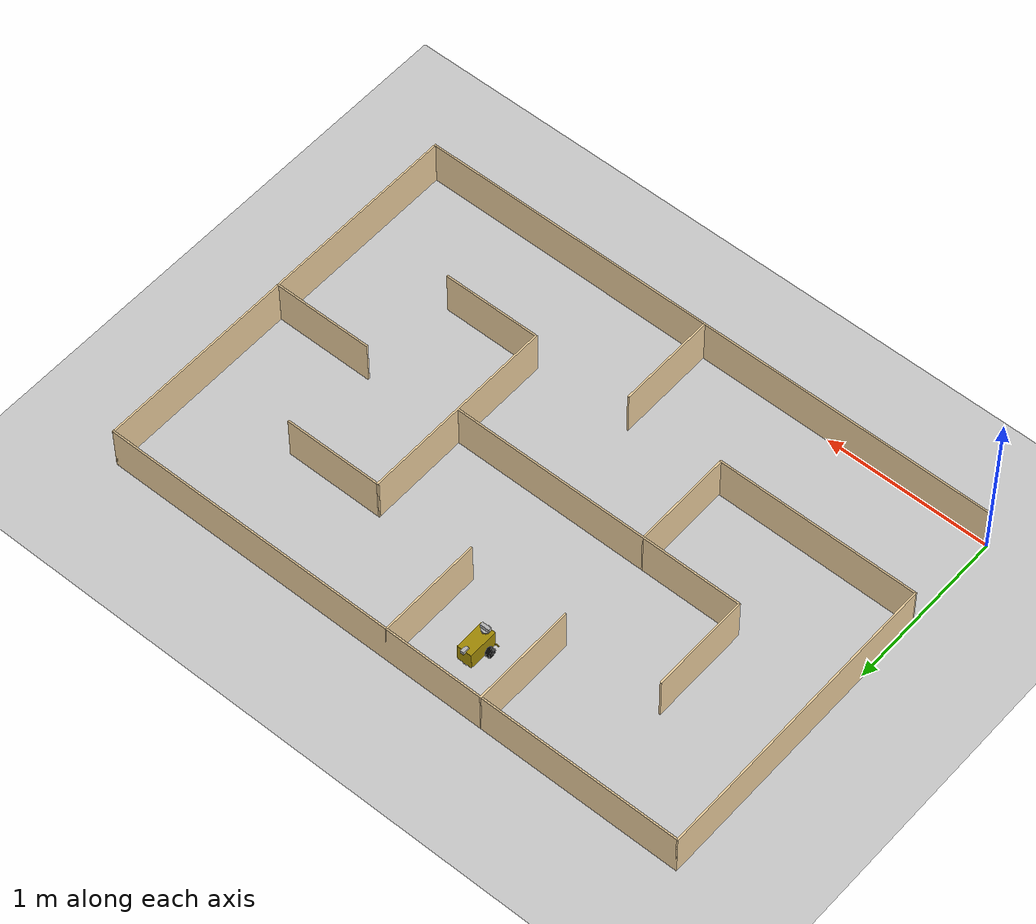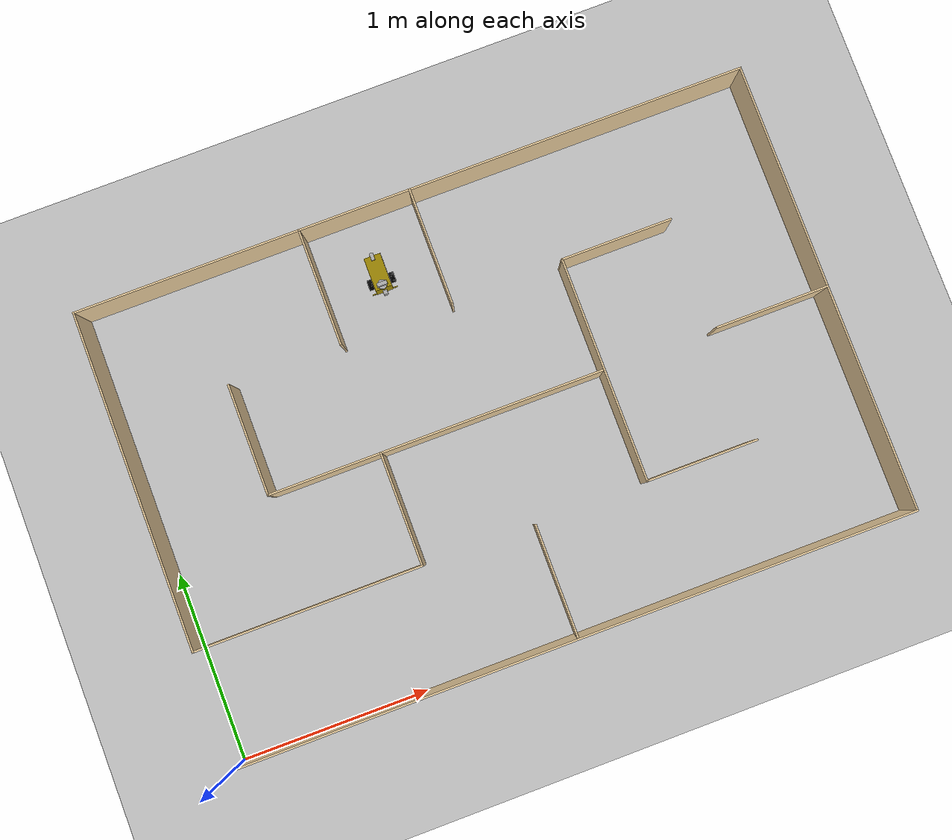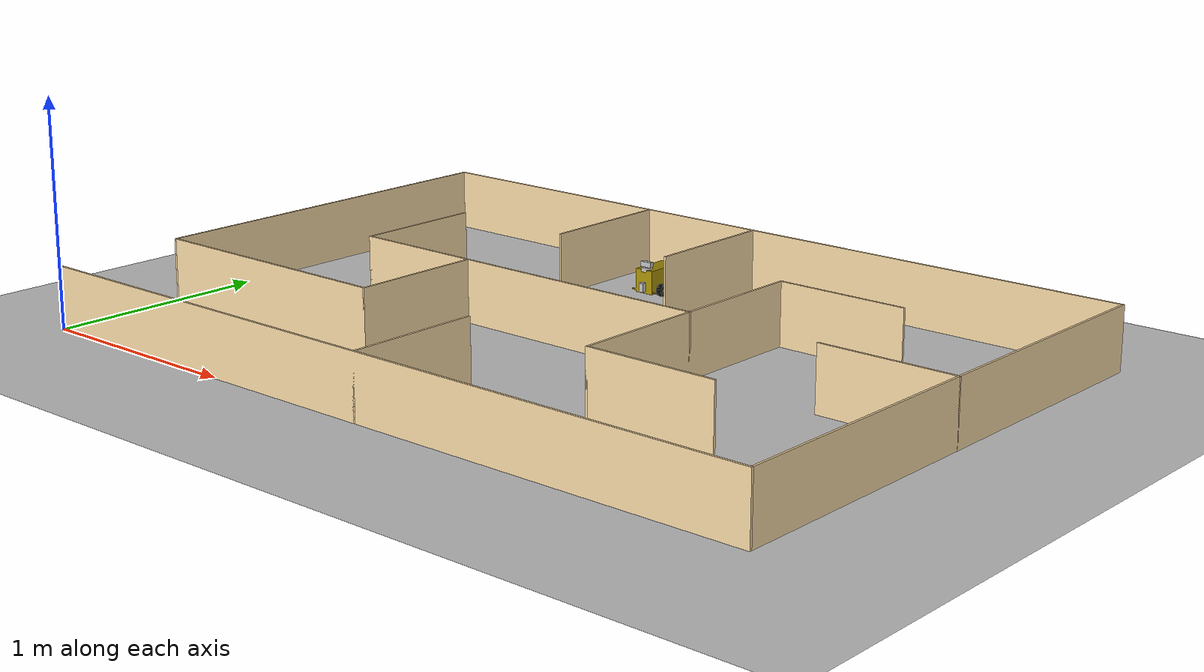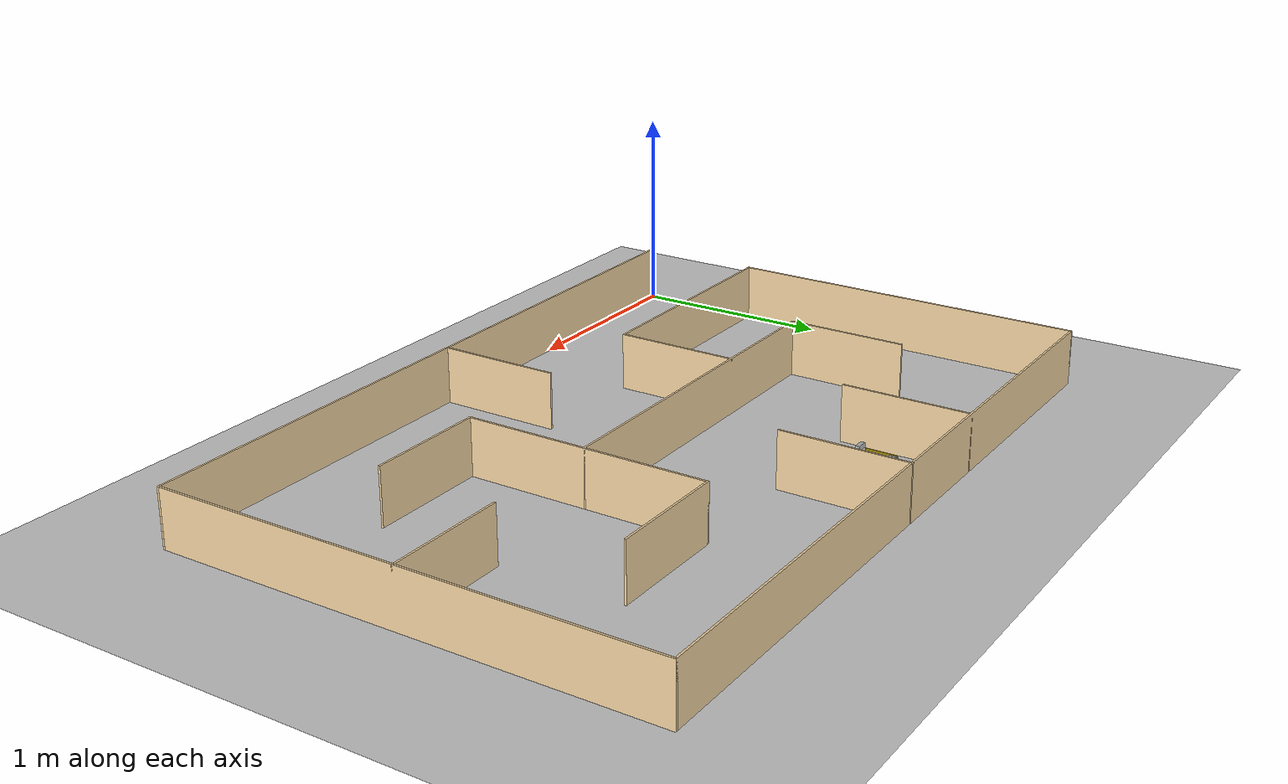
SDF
<?xml version="1.0" ?>
<sdf version="1.4">
  <world name="default">
    <scene>
      <ambient>0.5 0.5 0.5 1.0</ambient>
      <shadows>0</shadows>
    </scene>
    <include>
      <uri>model://ground_plane</uri>
    </include>
    <include>
      <uri>model://sun</uri>
    </include>
    <include>
      <uri>model://lego_mindstorm</uri>
      <name>lego_robot</name>
      <pose>1.51 2.11 0 0 0 3.1415926536</pose> <!-- this is the robot's starting position, if you know where it should be, you can change this -->
    </include>

    <model name='labyrinth_normal2'>
    <pose frame=''>1.81 1.21 0 0 -0 0</pose>
    <link name='Wall_0'>
      <collision name='Wall_0_Collision'>
        <geometry>
          <box>
            <size>1.82 0.01 0.28</size>
          </box>
        </geometry>
        <pose frame=''>0 0 0.14 0 -0 0</pose>
      </collision>
      <visual name='Wall_0_Visual'>
        <pose frame=''>0 0 0.14 0 -0 0</pose>
        <geometry>
          <box>
            <size>1.82 0.01 0.28</size>
          </box>
        </geometry>
        <material>
          <script>
            <uri>file://media/materials/scripts/gazebo.material</uri>
            <name>Gazebo/Grey</name>
          </script>
          <ambient>0.921569 0.807843 0.615686 1</ambient>
        </material>
        <meta>
          <layer>0</layer>
        </meta>
      </visual>
      <pose frame=''>-1.81 0.305 0 0 -0 1.5708</pose>
    </link>
    <link name='Wall_10'>
      <collision name='Wall_10_Collision'>
        <geometry>
          <box>
            <size>0.61 0.01 0.28</size>
          </box>
        </geometry>
        <pose frame=''>0 0 0.14 0 -0 0</pose>
      </collision>
      <visual name='Wall_10_Visual'>
        <pose frame=''>0 0 0.14 0 -0 0</pose>
        <geometry>
          <box>
            <size>0.61 0.01 0.28</size>
          </box>
        </geometry>
        <material>
          <script>
            <uri>file://media/materials/scripts/gazebo.material</uri>
            <name>Gazebo/Grey</name>
          </script>
          <ambient>0.921569 0.807843 0.615686 1</ambient>
        </material>
        <meta>
          <layer>0</layer>
        </meta>
      </visual>
      <pose frame=''>1.51 0 0 0 -0 3.14159</pose>
    </link>
    <link name='Wall_12'>
      <collision name='Wall_12_Collision'>
        <geometry>
          <box>
            <size>0.63 0.01 0.28</size>
          </box>
        </geometry>
        <pose frame=''>0 0 0.14 0 -0 0</pose>
      </collision>
      <visual name='Wall_12_Visual'>
        <pose frame=''>0 0 0.14 0 -0 0</pose>
        <geometry>
          <box>
            <size>0.63 0.01 0.28</size>
          </box>
        </geometry>
        <material>
          <script>
            <uri>file://media/materials/scripts/gazebo.material</uri>
            <name>Gazebo/Grey</name>
          </script>
          <ambient>0.921569 0.807843 0.615686 1</ambient>
        </material>
        <meta>
          <layer>0</layer>
        </meta>
      </visual>
      <pose frame=''>-0.6 0.9 0 0 0 -1.5708</pose>
    </link>
    <link name='Wall_14'>
      <collision name='Wall_14_Collision'>
        <geometry>
          <box>
            <size>0.63 0.01 0.28</size>
          </box>
        </geometry>
        <pose frame=''>0 0 0.14 0 -0 0</pose>
      </collision>
      <visual name='Wall_14_Visual'>
        <pose frame=''>0 0 0.14 0 -0 0</pose>
        <geometry>
          <box>
            <size>0.63 0.01 0.28</size>
          </box>
        </geometry>
        <material>
          <script>
            <uri>file://media/materials/scripts/gazebo.material</uri>
            <name>Gazebo/Grey</name>
          </script>
          <ambient>0.921569 0.807843 0.615686 1</ambient>
        </material>
        <meta>
          <layer>0</layer>
        </meta>
      </visual>
      <pose frame=''>0 0.9 0 0 0 -1.5708</pose>
    </link>
    <link name='Wall_16'>
      <collision name='Wall_16_Collision'>
        <geometry>
          <box>
            <size>1.22 0.01 0.28</size>
          </box>
        </geometry>
        <pose frame=''>0 0 0.14 0 -0 0</pose>
      </collision>
      <visual name='Wall_16_Visual'>
        <pose frame=''>0 0 0.14 0 -0 0</pose>
        <geometry>
          <box>
            <size>1.22 0.01 0.28</size>
          </box>
        </geometry>
        <material>
          <script>
            <uri>file://media/materials/scripts/gazebo.material</uri>
            <name>Gazebo/Grey</name>
          </script>
          <ambient>0.921569 0.807843 0.615686 1</ambient>
        </material>
        <meta>
          <layer>0</layer>
        </meta>
      </visual>
      <pose frame=''>-1.205 -0.6 0 0 -0 0</pose>
    </link>
    <link name='Wall_18'>
      <collision name='Wall_18_Collision'>
        <geometry>
          <box>
            <size>0.61 0.01 0.28</size>
          </box>
        </geometry>
        <pose frame=''>0 0 0.14 0 -0 0</pose>
      </collision>
      <visual name='Wall_18_Visual'>
        <pose frame=''>0 0 0.14 0 -0 0</pose>
        <geometry>
          <box>
            <size>0.61 0.01 0.28</size>
          </box>
        </geometry>
        <material>
          <script>
            <uri>file://media/materials/scripts/gazebo.material</uri>
            <name>Gazebo/Grey</name>
          </script>
          <ambient>0.921569 0.807843 0.615686 1</ambient>
        </material>
        <meta>
          <layer>0</layer>
        </meta>
      </visual>
      <pose frame=''>-0.6 -0.3 0 0 -0 1.5708</pose>
    </link>
    <link name='Wall_2'>
      <collision name='Wall_2_Collision'>
        <geometry>
          <box>
            <size>3.63 0.01 0.28</size>
          </box>
        </geometry>
        <pose frame=''>0 0 0.14 0 -0 0</pose>
      </collision>
      <visual name='Wall_2_Visual'>
        <pose frame=''>0 0 0.14 0 -0 0</pose>
        <geometry>
          <box>
            <size>3.63 0.01 0.28</size>
          </box>
        </geometry>
        <material>
          <script>
            <uri>file://media/materials/scripts/gazebo.material</uri>
            <name>Gazebo/Grey</name>
          </script>
          <ambient>0.921569 0.807843 0.615686 1</ambient>
        </material>
        <meta>
          <layer>0</layer>
        </meta>
      </visual>
      <pose frame=''>0 1.21 0 0 -0 0</pose>
    </link>
    <link name='Wall_20'>
      <collision name='Wall_20_Collision'>
        <geometry>
          <box>
            <size>0.6 0.01 0.28</size>
          </box>
        </geometry>
        <pose frame=''>0 0 0.14 0 -0 0</pose>
      </collision>
      <visual name='Wall_20_Visual'>
        <pose frame=''>0 0 0.14 0 -0 0</pose>
        <geometry>
          <box>
            <size>0.6 0.01 0.28</size>
          </box>
        </geometry>
        <material>
          <script>
            <uri>file://media/materials/scripts/gazebo.material</uri>
            <name>Gazebo/Grey</name>
          </script>
          <ambient>0.921569 0.807843 0.615686 1</ambient>
        </material>
        <meta>
          <layer>0</layer>
        </meta>
      </visual>
      <pose frame=''>-1.2 0.295 0 0 0 -1.5708</pose>
    </link>
    <link name='Wall_22'>
      <collision name='Wall_22_Collision'>
        <geometry>
          <box>
            <size>1.81 0.01 0.28</size>
          </box>
        </geometry>
        <pose frame=''>0 0 0.14 0 -0 0</pose>
      </collision>
      <visual name='Wall_22_Visual'>
        <pose frame=''>0 0 0.14 0 -0 0</pose>
        <geometry>
          <box>
            <size>1.81 0.01 0.28</size>
          </box>
        </geometry>
        <material>
          <script>
            <uri>file://media/materials/scripts/gazebo.material</uri>
            <name>Gazebo/Grey</name>
          </script>
          <ambient>0.921569 0.807843 0.615686 1</ambient>
        </material>
        <meta>
          <layer>0</layer>
        </meta>
      </visual>
      <pose frame=''>-0.3 0 0 0 -0 0</pose>
    </link>
    <link name='Wall_24'>
      <collision name='Wall_24_Collision'>
        <geometry>
          <box>
            <size>1.21 0.01 0.28</size>
          </box>
        </geometry>
        <pose frame=''>0 0 0.14 0 -0 0</pose>
      </collision>
      <visual name='Wall_24_Visual'>
        <pose frame=''>0 0 0.14 0 -0 0</pose>
        <geometry>
          <box>
            <size>1.21 0.01 0.28</size>
          </box>
        </geometry>
        <material>
          <script>
            <uri>file://media/materials/scripts/gazebo.material</uri>
            <name>Gazebo/Grey</name>
          </script>
          <ambient>0.921569 0.807843 0.615686 1</ambient>
        </material>
        <meta>
          <layer>0</layer>
        </meta>
      </visual>
      <pose frame=''>0.6 0 0 0 0 -1.5708</pose>
    </link>
    <link name='Wall_26'>
      <collision name='Wall_26_Collision'>
        <geometry>
          <box>
            <size>0.6 0.01 0.28</size>
          </box>
        </geometry>
        <pose frame=''>0 0 0.14 0 -0 0</pose>
      </collision>
      <visual name='Wall_26_Visual'>
        <pose frame=''>0 0 0.14 0 -0 0</pose>
        <geometry>
          <box>
            <size>0.6 0.01 0.28</size>
          </box>
        </geometry>
        <material>
          <script>
            <uri>file://media/materials/scripts/gazebo.material</uri>
            <name>Gazebo/Grey</name>
          </script>
          <ambient>0.921569 0.807843 0.615686 1</ambient>
        </material>
        <meta>
          <layer>0</layer>
        </meta>
      </visual>
      <pose frame=''>0.895 0.6 0 0 -0 0</pose>
    </link>
    <link name='Wall_28'>
      <collision name='Wall_28_Collision'>
        <geometry>
          <box>
            <size>0.6 0.01 0.28</size>
          </box>
        </geometry>
        <pose frame=''>0 0 0.14 0 -0 0</pose>
      </collision>
      <visual name='Wall_28_Visual'>
        <pose frame=''>0 0 0.14 0 -0 0</pose>
        <geometry>
          <box>
            <size>0.6 0.01 0.28</size>
          </box>
        </geometry>
        <material>
          <script>
            <uri>file://media/materials/scripts/gazebo.material</uri>
            <name>Gazebo/Grey</name>
          </script>
          <ambient>0.921569 0.807843 0.615686 1</ambient>
        </material>
        <meta>
          <layer>0</layer>
        </meta>
      </visual>
      <pose frame=''>0.895 -0.6 0 0 -0 0</pose>
    </link>
    <link name='Wall_4'>
      <collision name='Wall_4_Collision'>
        <geometry>
          <box>
            <size>2.43 0.01 0.28</size>
          </box>
        </geometry>
        <pose frame=''>0 0 0.14 0 -0 0</pose>
      </collision>
      <visual name='Wall_4_Visual'>
        <pose frame=''>0 0 0.14 0 -0 0</pose>
        <geometry>
          <box>
            <size>2.43 0.01 0.28</size>
          </box>
        </geometry>
        <material>
          <script>
            <uri>file://media/materials/scripts/gazebo.material</uri>
            <name>Gazebo/Grey</name>
          </script>
          <ambient>0.921569 0.807843 0.615686 1</ambient>
        </material>
        <meta>
          <layer>0</layer>
        </meta>
      </visual>
      <pose frame=''>1.81 0 0 0 0 -1.5708</pose>
    </link>
    <link name='Wall_6'>
      <collision name='Wall_6_Collision'>
        <geometry>
          <box>
            <size>3.63 0.01 0.28</size>
          </box>
        </geometry>
        <pose frame=''>0 0 0.14 0 -0 0</pose>
      </collision>
      <visual name='Wall_6_Visual'>
        <pose frame=''>0 0 0.14 0 -0 0</pose>
        <geometry>
          <box>
            <size>3.63 0.01 0.28</size>
          </box>
        </geometry>
        <material>
          <script>
            <uri>file://media/materials/scripts/gazebo.material</uri>
            <name>Gazebo/Grey</name>
          </script>
          <ambient>0.921569 0.807843 0.615686 1</ambient>
        </material>
        <meta>
          <layer>0</layer>
        </meta>
      </visual>
      <pose frame=''>0 -1.21 0 0 -0 3.14159</pose>
    </link>
    <link name='Wall_8'>
      <collision name='Wall_8_Collision'>
        <geometry>
          <box>
            <size>0.61 0.01 0.28</size>
          </box>
        </geometry>
        <pose frame=''>0 0 0.14 0 -0 0</pose>
      </collision>
      <visual name='Wall_8_Visual'>
        <pose frame=''>0 0 0.14 0 -0 0</pose>
        <geometry>
          <box>
            <size>0.61 0.01 0.28</size>
          </box>
        </geometry>
        <material>
          <script>
            <uri>file://media/materials/scripts/gazebo.material</uri>
            <name>Gazebo/Grey</name>
          </script>
          <ambient>0.921569 0.807843 0.615686 1</ambient>
        </material>
        <meta>
          <layer>0</layer>
        </meta>
      </visual>
      <pose frame=''>0 -0.91 0 0 -0 1.5708</pose>
    </link>
    <static>1</static>
  </model>

  </world>
</sdf>

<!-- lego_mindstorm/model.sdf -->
<sdf version='1.4'>
  <model name="lego_robot">
    <static>false</static>
    <link name='chassis'>
      <pose>0 0 0 0 0 0</pose>
      <inertial>
        <mass>5</mass>
        <pose>0 -0.03 0.07 0 0 0</pose>
        <inertia>
          <ixx>0.0229</ixx>
          <iyy>0.01275</iyy>
          <izz>0.0169</izz>
        </inertia>
      </inertial>

      <collision name='collision'>
        <geometry>
	  <mesh>
            <uri>model://lego_mindstorm/meshes/body.dae</uri>
          </mesh>
        </geometry>
      </collision>

      <visual name='visual'>
        <geometry>
	  <mesh>
            <uri>model://lego_mindstorm/meshes/body.dae</uri>
          </mesh>
        </geometry>
      </visual>

      <collision name='caster_collision'>
    	<pose>0 -0.0777713 0 0 0 0</pose>
    	<geometry>
	  <mesh>
            <uri>model://lego_mindstorm/meshes/caster.dae</uri>
          </mesh>
    	</geometry>

    	<surface>
      	  <friction>
	    <ode>
	    <mu>0</mu>
	    <mu2>0</mu2>
	    <slip1>1.0</slip1>
	    <slip2>1.0</slip2>
	    </ode>
	  </friction>
    	</surface>
      </collision>

      <visual name='caster_visual'>
    	<pose>0 -0.0777713 0 0 0 0</pose>
    	<geometry>
	  <mesh>
            <uri>model://lego_mindstorm/meshes/caster.dae</uri>
          </mesh>
        </geometry>
      </visual>

      <collision name='camera_collision'>
    	<pose>0 0.1005 0.045 0 0 0</pose>
    	<geometry>
	  <box>
	    <size>0.023 0.023 .04</size>
	  </box>
    	</geometry>
      </collision>

      <visual name='camera_visual'>
    	<pose>0 0.1005 0.045 0 0 0</pose>
    	<geometry>
	  <box>
	    <size>0.023 0.023 .04</size>
	  </box>
        </geometry>
      </visual>

      <sensor name="camera" type="camera">
	<pose>0 0.1005 0.045 0 1.5707 1.5707</pose>
        <camera>
          <horizontal_fov>0.08</horizontal_fov>
          <image>
	    <width>48</width>
            <height>48</height>
          </image>
          <clip>
            <near>0.021</near>
            <far>0.046</far>
          </clip>
        </camera>
        <always_on>1</always_on>
        <update_rate>30</update_rate>
        <visualize>true</visualize>

	<plugin name="camera_controller" filename="libgazebo_ros_camera.so">
          <alwaysOn>true</alwaysOn>
          <updateRate>30.0</updateRate>
          <cameraName>camera1</cameraName>
          <imageTopicName>image_raw</imageTopicName>
          <cameraInfoTopicName>camera_info</cameraInfoTopicName>
          <frameName>camera_link</frameName>
          <hackBaseline>0.07</hackBaseline>
          <distortionK1>0.0</distortionK1>
          <distortionK2>0.0</distortionK2>
          <distortionK3>0.0</distortionK3>
          <distortionT1>0.0</distortionT1>
          <distortionT2>0.0</distortionT2>
        </plugin>

      </sensor>

    </link>

    <link name="sonar_sensor">
      <pose>0 0.07 0.1455 0 0 0</pose>
      <collision name='sonar_collision'>
    	<geometry>
	  <box>
	    <size>0.055 0.02 .023</size>
	  </box>
    	</geometry>
      </collision>

	<inertial>
	 <mass>0.001</mass>
	 <inertia>
	 <ixx>0.0000001</ixx>
	 <iyy>0.0000001</iyy>
	 <izz>0.0000001</izz>
	 </inertia>
	 </inertial>

      <visual name='sonar_visual'>
    	<geometry>
	  <box>
	    <size>0.055 0.02 .023</size>
	  </box>
        </geometry>
      </visual>

      <sensor name="sonar" type="ray">
	<pose>0 0 0 0 0 1.5707</pose>
	<ray>
	  <scan>
	    <horizontal>
	      <samples>100</samples>
              <resolution>1</resolution>
              <min_angle>-0.3927</min_angle>
	      <max_angle>0.3927</max_angle>
	    </horizontal>
	  </scan>
	  <range>
            <min>0.029</min>
            <max>2.55</max>
            <resolution>0.1</resolution>
          </range>
	</ray>
        <always_on>1</always_on>
        <update_rate>30</update_rate>
        <visualize>true</visualize>

	<plugin name="sonar_controller" filename="libgazebo_ros_sonar.so">
          <robotNamespace>lego_robot</robotNamespace>
	  <topicName>sonar</topicName>
        </plugin>

      </sensor>
    </link>

    <link name="sonar_wheel">
      <pose>0 0.07 0.124 0 0 0</pose>
      <collision name="collision">
        <geometry>
	  <cylinder>
            <radius>.025</radius>
            <length>.02</length>
          </cylinder>
        </geometry>
      </collision>

	<inertial>
	 <mass>1</mass>
	 <inertia>
	 <ixx>0.000019</ixx>
	 <iyy>0.000019</iyy>
	 <izz>0.000031</izz>
	 </inertia>
	 </inertial>

      <visual name="visual">
        <geometry>
	  <cylinder>
            <radius>.025</radius>
            <length>.02</length>
          </cylinder>
        </geometry>
      </visual>
    </link>

    <link name="gyro_sensor">
      <collision name='gyro_collision'>
    	<pose>0 -0.085 0.124 0 0 0</pose>
    	<geometry>
	  <box>
	    <size>0.02 0.04 .02</size>
	  </box>
    	</geometry>
      </collision>

	<inertial>
	 <pose>0 -0.085 0.124 0 0 0</pose>
	 <mass>0.0001</mass>
	 <inertia>
	 <ixx>0.00000001</ixx>
	 <iyy>0.00000001</iyy>
	 <izz>0.00000001</izz>
	 </inertia>
	 </inertial>

      <visual name='gyro_visual'>
    	<pose>0 -0.085 0.124 0 0 0</pose>
    	<geometry>
	  <box>
	    <size>0.02 0.04 .02</size>
	  </box>
        </geometry>
      </visual>
    </link>

    <link name="left_wheel">
      <pose>-0.059 0.032 0.028 0 1.5707 0</pose>
      <collision name="collision">
        <geometry>
	  <cylinder>
            <radius>.028</radius>
            <length>.029</length>
          </cylinder>
        </geometry>
	<surface>
      	  <friction>
	    <ode>
  	      <mu>0.6</mu>
	      <mu2>0.6</mu2>
	    </ode>
          </friction>
    	</surface>
      </collision>

	<inertial>
	 <mass>2</mass>
	 <inertia>
	 <ixx>0.000532</ixx>
	 <iyy>0.000532</iyy>
	 <izz>0.00078</izz>
	 </inertia>
	 </inertial>

      <visual name="visual">
	<pose>-0.028 0 0 0 1.5707 0</pose>
        <geometry>
          <mesh>
            <uri>model://lego_mindstorm/meshes/wheel.dae</uri>
          </mesh>
        </geometry>
      </visual>
    </link>

    <link name="right_wheel">
      <pose>0.059 0.032 0.028 0 1.5707 0</pose>
      <collision name="collision">
        <geometry>
	  <cylinder>
            <radius>.028</radius>
            <length>.029</length>
          </cylinder>
        </geometry>
	<surface>
      	  <friction>
	    <ode>
	      <mu>0.6</mu>
	      <mu2>0.6</mu2>
	    </ode>
          </friction>
    	</surface>
	</collision>

	<inertial>
	 <mass>2</mass>
	 <inertia>
	 <ixx>0.000532</ixx>
	 <iyy>0.000532</iyy>
	 <izz>0.00078</izz>
	 </inertia>
	 </inertial>

      <visual name="visual">
	<pose>-0.028 0 0 0 1.5707 0</pose>
        <geometry>
          <mesh>
            <uri>model://lego_mindstorm/meshes/wheel.dae</uri>

          </mesh>
        </geometry>
      </visual>
    </link>

    <joint type="revolute" name="left_wheel_hinge">
      <pose>0 0 -0.03 0 0 0</pose>
      <child>left_wheel</child>
      <parent>chassis</parent>
      <axis>
        <xyz>-1 0 0</xyz>
      </axis>
    </joint>

    <joint type="revolute" name="right_wheel_hinge">
      <pose>0 0 0.03 0 0 0</pose>
      <child>right_wheel</child>
      <parent>chassis</parent>
      <axis>
        <xyz>-1 0 0</xyz>
      </axis>
    </joint>

    <joint type="revolute" name="gyro_hinge">
      <pose>0 0 0 0 0 0</pose>
      <child>gyro_sensor</child>
      <parent>chassis</parent>
      <axis>
        <xyz>0 0 1</xyz>
	<limit>
          <upper>0</upper>
          <lower>0</lower>
    	</limit>
      </axis>
    </joint>

    <joint type="revolute" name="sonar_wheel_hinge">
      <pose>0 0 0 0 0 0</pose>
      <child>sonar_wheel</child>
      <parent>chassis</parent>
      <axis>
        <xyz>0 0 1</xyz>
	<limit>
          <upper>2.3562</upper>
          <lower>-2.3562</lower>
    	</limit>
      </axis>
    </joint>

    <joint type="revolute" name="sonar_hinge">
      <pose>0 0 0 0 0 0</pose>
      <child>sonar_sensor</child>
      <parent>sonar_wheel</parent>
      <axis>
        <xyz>0 0 1</xyz>
	<limit>
          <upper>0</upper>
          <lower>0</lower>
    	</limit>
      </axis>
    </joint>

    <plugin name="right_wheel_controller" filename="libwheel_plugin.so">
	<jointName>right_wheel_hinge</jointName>
      	<commandTopic>cmd_vel_right</commandTopic>
	<wheelDiameter>0.056</wheelDiameter>
      	<drive>true</drive>
    </plugin>
    <plugin name="left_wheel_controller" filename="libwheel_plugin.so">
	<jointName>left_wheel_hinge</jointName>
      	<commandTopic>cmd_vel_left</commandTopic>
	<wheelDiameter>0.056</wheelDiameter>
      	<drive>true</drive>
    </plugin>

    <plugin name="sonar_wheel_controller" filename="libsonar_wheel_plugin.so">

    </plugin>

    <plugin name="gyro_controller" filename="libgyro_plugin.so">

    </plugin>

  </model>
</sdf>
